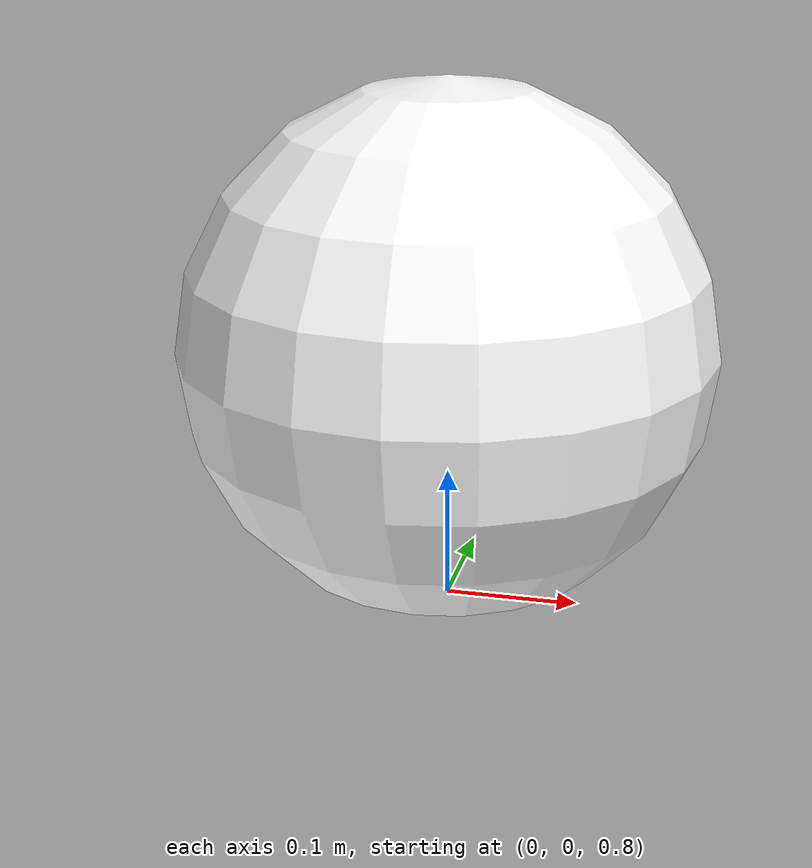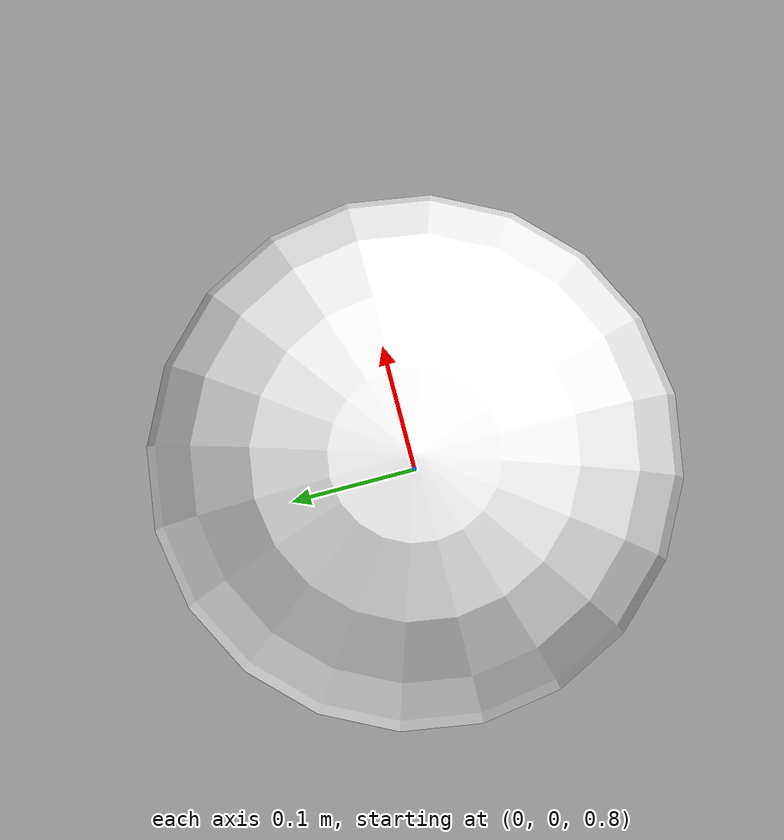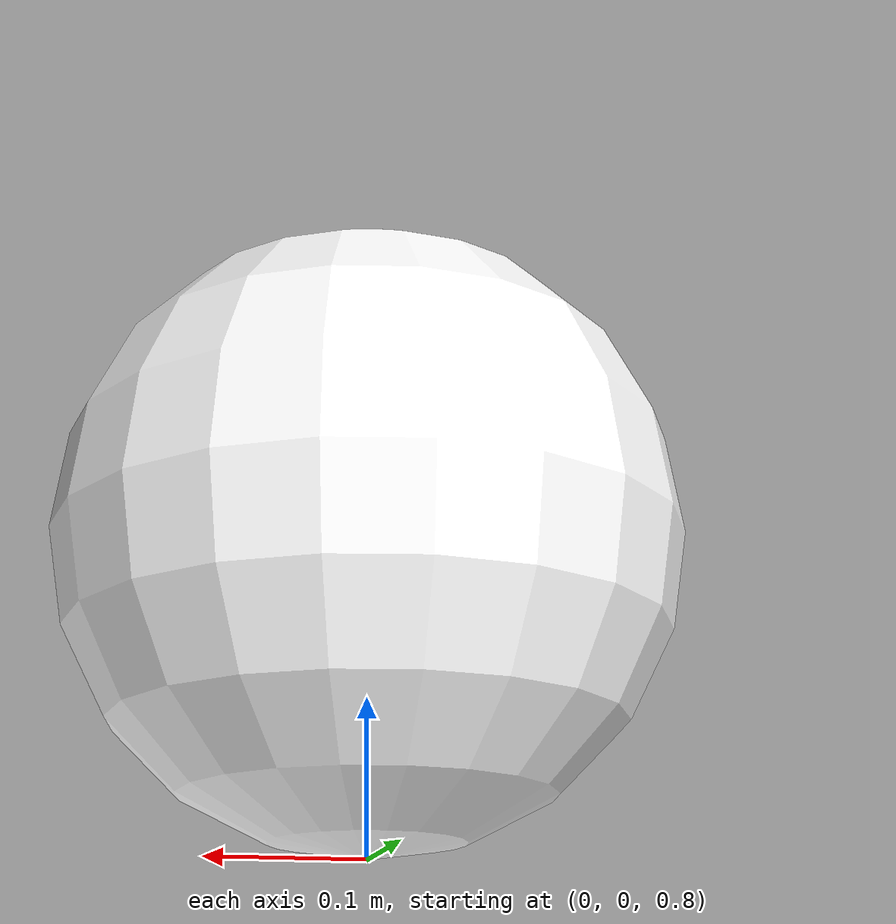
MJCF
<mujoco model="ball">
  <compiler coordinate="local" inertiafromgeom="true"/>
  <default>
    <joint damping="0.2"/>
    <geom contype="3" conaffinity="3" friction="0 0 0" rgba="0.7 0.7 0 1"/>
  </default>
  <option gravity="1e-5 0 -9.81" integrator="Euler" timestep="0.05"/>
  <size nstack="3000"/>
  <worldbody>
    <camera name="rgb" mode="fixed" pos="0 4 0.0" euler="-90 0 180"/>
    <body name="ball" pos="0 0 0">
      <body name="mass" pos="0 0 1.">
          <geom size="0.2 0.2" mass="0" rgba="1 1 1 1" type="sphere" name="gmass" contype="3" conaffinity="3"/>
          <site name="tip" pos="0 0 0." size="0.01 0.01"/>
      </body>
    </body>
  </worldbody>
</mujoco>
